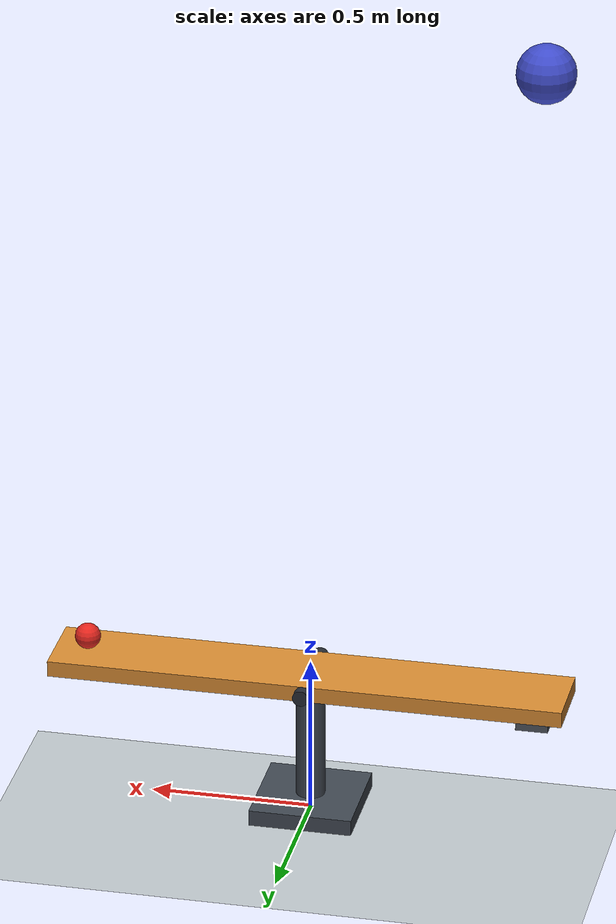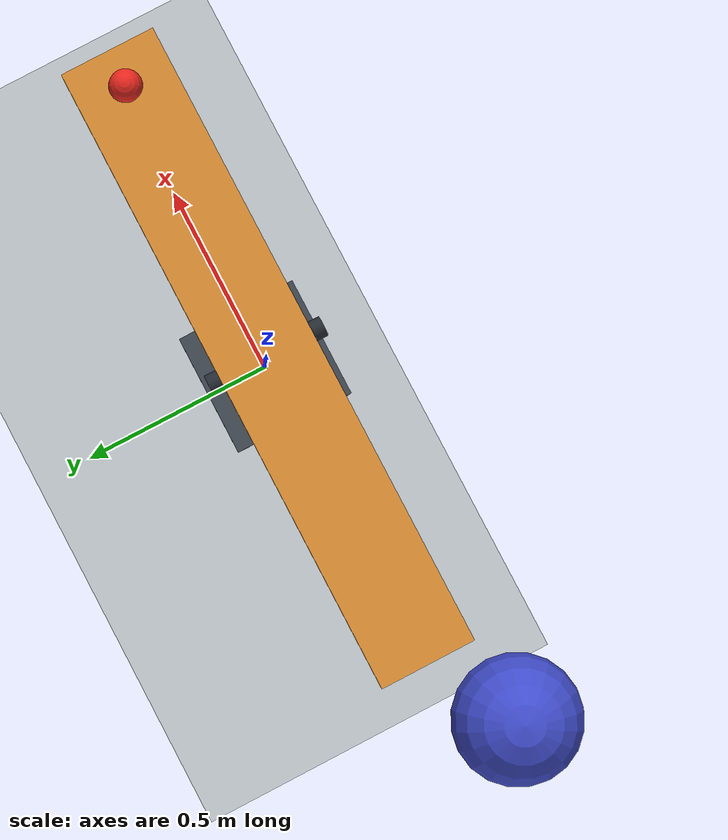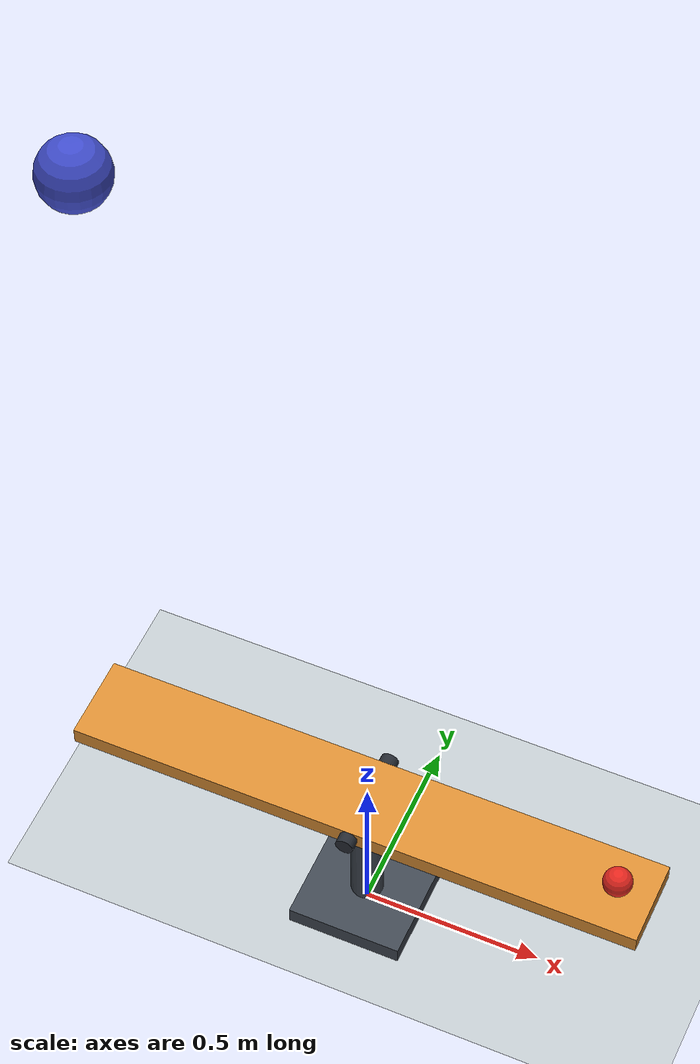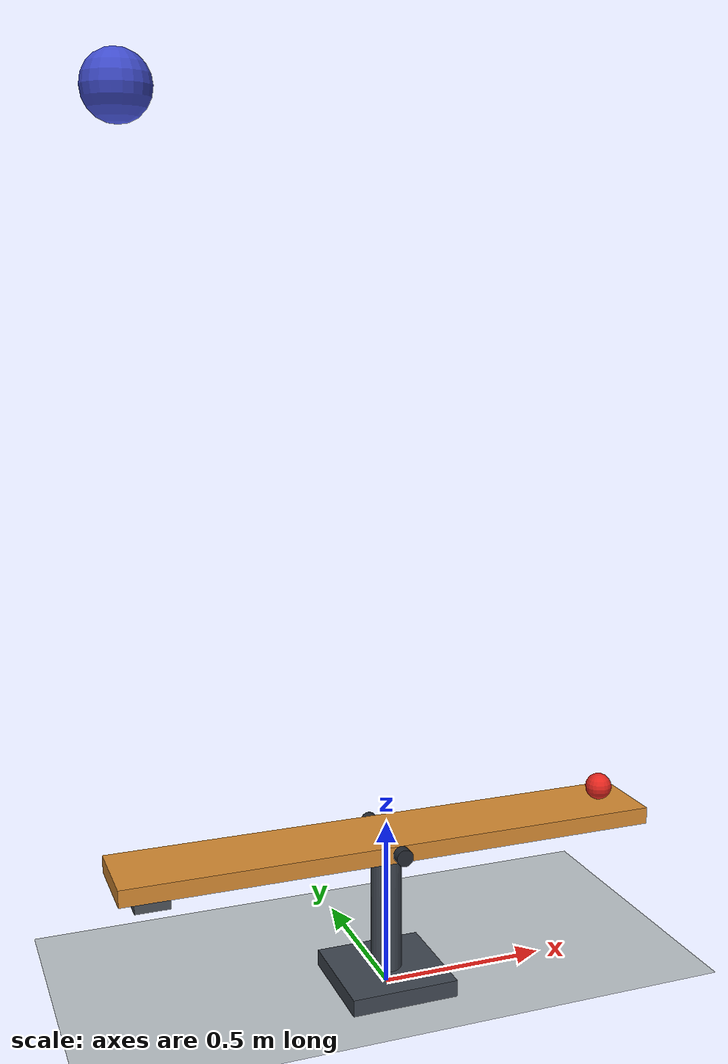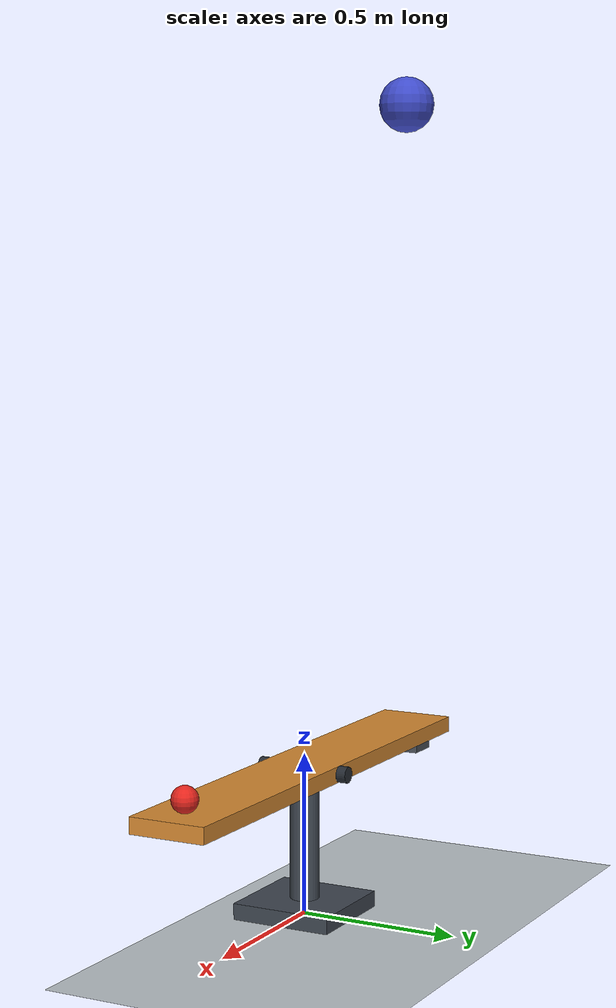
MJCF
<mujoco model="drop_weight_seesaw">
  <compiler angle="radian" autolimits="true"/>
  <option timestep="0.002" gravity="0 0 -9.81" integrator="implicitfast" iterations="100" cone="elliptic"/>
  <statistic center="0 0 1.1" extent="3"/>

  <worldbody>
    <light name="overhead" pos="0 -2 4" dir="0 0 -1"/>
    <camera name="overview" pos="3 -5 2.8" xyaxes="0.857 0.514 0 -0.159 0.265 0.951"/>

    <geom name="floor" type="plane" size="6 6 0.1" pos="0 0 0" friction="1 0.01 0.001" rgba="0.75 0.78 0.80 1"/>

    <body name="support" pos="0 0 0">
      <geom name="support_base" type="box" pos="0 0 0.025" size="0.16 0.16 0.025" contype="0" conaffinity="0" rgba="0.25 0.28 0.32 1"/>
      <geom name="support_post" type="cylinder" pos="0 0 0.225" size="0.045 0.20" contype="0" conaffinity="0" rgba="0.25 0.28 0.32 1"/>
      <geom name="support_axle" type="cylinder" pos="0 0 0.45" quat="0.70710678 0.70710678 0 0" size="0.025 0.15" contype="0" conaffinity="0" rgba="0.15 0.17 0.20 1"/>
    </body>

    <body name="seesaw" pos="0 0 0.45">
      <joint name="seesaw_hinge" type="hinge" axis="0 1 0" limited="true" range="-0.50 0.10" damping="0.015" frictionloss="0.015" solreflimit="0.004 1" solimplimit="0.99 0.99 0.001"/>
      <geom name="seesaw_deck" type="box" size="0.80 0.12 0.025" mass="0.20" friction="0.8 0.005 0.0001" solref="0.005 1" solimp="0.95 0.99 0.001" rgba="0.85 0.55 0.20 1"/>
      <geom name="seesaw_counterweight" type="box" pos="-0.70 0 -0.05" size="0.05 0.07 0.025" mass="0.10" contype="0" conaffinity="0" rgba="0.30 0.32 0.35 1"/>
    </body>

    <body name="weight" pos="-0.70 0 2.50">
      <freejoint/>
      <geom name="weight_sphere" type="sphere" size="0.09" mass="1.0" friction="0.8 0.005 0.0001" solref="0.005 1" solimp="0.95 0.99 0.001" rgba="0.25 0.30 0.80 1"/>
    </body>

    <body name="ball" pos="0.70 0 0.515">
      <freejoint/>
      <geom name="ball" type="sphere" size="0.04" mass="0.10" friction="0.8 0.005 0.0001" solref="0.005 1" solimp="0.95 0.99 0.001" rgba="0.90 0.15 0.12 1"/>
    </body>
  </worldbody>

  <keyframe>
    <key name="start" qpos="0 -0.70 0 2.50 1 0 0 0 0.70 0 0.515 1 0 0 0"/>
  </keyframe>
</mujoco>
